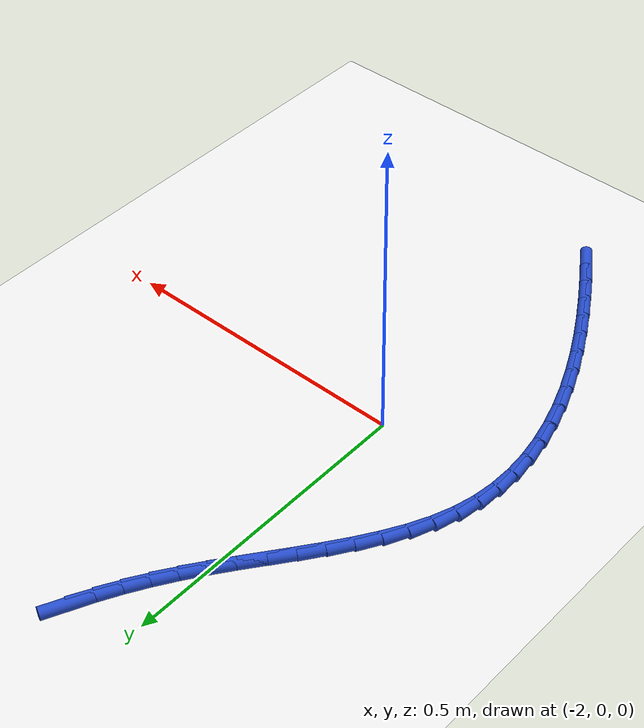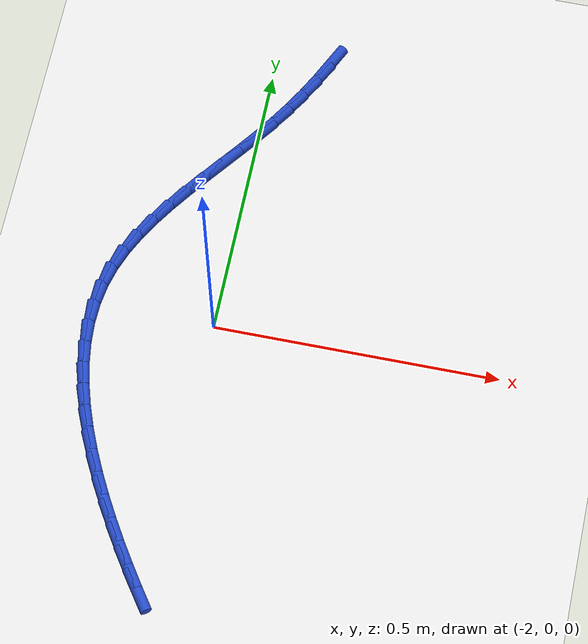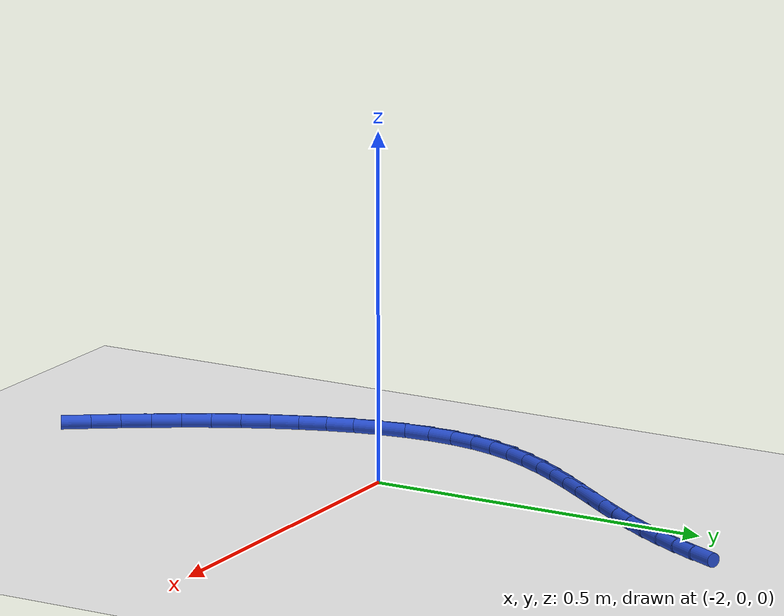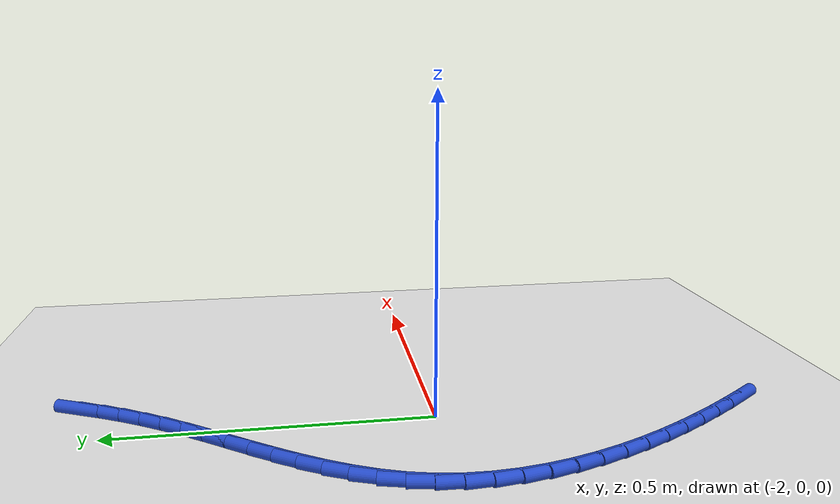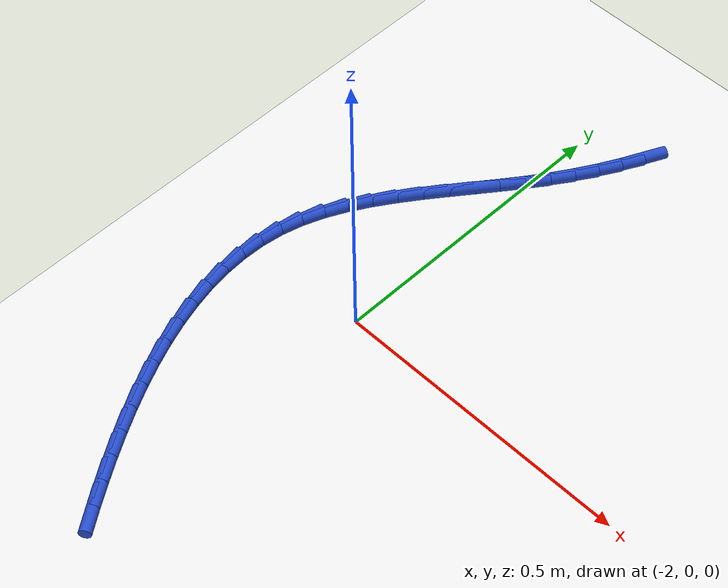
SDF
<sdf version="1.6">
 <world name="default">
  <model name="ground_plane">
   <static>1</static>
   <link name="link">
    <collision name="collision">
     <geometry><plane><normal>0 0 1</normal><size>100 100</size></plane></geometry>
     <surface><friction><ode><mu>100</mu><mu2>50</mu2></ode></friction></surface>
    </collision>
    <visual name="visual">
     <cast_shadows>0</cast_shadows>
     <geometry><plane><normal>0 0 1</normal><size>100 100</size></plane></geometry>
     <material>
      <script><uri>file://media/materials/scripts/gazebo.material</uri><name>Gazebo/WhiteGlow</name></script>
     </material>
    </visual>
   </link>
  </model>
  <model name="line">
   <link name="link_76">
    <pose>-1.9034430105590137 0.5442311205323154 0.01 0 1.57 1.1265762466182048</pose>
    <collision name="collision">
     <geometry><cylinder><radius>0.01</radius><length>0.08</length></cylinder></geometry>
    </collision>
    <visual name="visual">
     <material>
      <script><name>Gazebo/Blue</name><uri>file://media/materials/scripts/gazebo.material</uri></script>
     </material>
     <geometry><cylinder><radius>0.01</radius><length>0.08</length></cylinder></geometry>
    </visual>
   </link>
   <link name="link_77">
    <pose>-1.9202105519209811 0.5090012125801455 0.01 0 1.57 1.0825564240523091</pose>
    <collision name="collision">
     <geometry><cylinder><radius>0.01</radius><length>0.08</length></cylinder></geometry>
    </collision>
    <visual name="visual">
     <material>
      <script><name>Gazebo/Blue</name><uri>file://media/materials/scripts/gazebo.material</uri></script>
     </material>
     <geometry><cylinder><radius>0.01</radius><length>0.08</length></cylinder></geometry>
    </visual>
   </link>
   <link name="link_78">
    <pose>-1.9383796301669056 0.4747928299517657 0.01 0 1.57 1.0402720654731736</pose>
    <collision name="collision">
     <geometry><cylinder><radius>0.01</radius><length>0.08</length></cylinder></geometry>
    </collision>
    <visual name="visual">
     <material>
      <script><name>Gazebo/Blue</name><uri>file://media/materials/scripts/gazebo.material</uri></script>
     </material>
     <geometry><cylinder><radius>0.01</radius><length>0.08</length></cylinder></geometry>
    </visual>
   </link>
   <link name="link_79">
    <pose>-1.9579920157531838 0.44136005151611074 0.01 0 1.57 1.000632323656434</pose>
    <collision name="collision">
     <geometry><cylinder><radius>0.01</radius><length>0.08</length></cylinder></geometry>
    </collision>
    <visual name="visual">
     <material>
      <script><name>Gazebo/Blue</name><uri>file://media/materials/scripts/gazebo.material</uri></script>
     </material>
     <geometry><cylinder><radius>0.01</radius><length>0.08</length></cylinder></geometry>
    </visual>
   </link>
   <link name="link_80">
    <pose>-1.979089479136213 0.40845695614211586 0.01 0 1.57 0.9643962820231499</pose>
    <collision name="collision">
     <geometry><cylinder><radius>0.01</radius><length>0.08</length></cylinder></geometry>
    </collision>
    <visual name="visual">
     <material>
      <script><name>Gazebo/Blue</name><uri>file://media/materials/scripts/gazebo.material</uri></script>
     </material>
     <geometry><cylinder><radius>0.01</radius><length>0.08</length></cylinder></geometry>
    </visual>
   </link>
   <link name="link_81">
    <pose>-2.0017133189981187 0.375837731064948 0.01 0 1.57 0.9349297898216811</pose>
    <collision name="collision">
     <geometry><cylinder><radius>0.01</radius><length>0.08</length></cylinder></geometry>
    </collision>
    <visual name="visual">
     <material>
      <script><name>Gazebo/Blue</name><uri>file://media/materials/scripts/gazebo.material</uri></script>
     </material>
     <geometry><cylinder><radius>0.01</radius><length>0.08</length></cylinder></geometry>
    </visual>
   </link>
   <link name="link_82">
    <pose>-2.025733727519699 0.3432958665674344 0.01 0 1.57 0.9188517485163389</pose>
    <collision name="collision">
     <geometry><cylinder><radius>0.01</radius><length>0.08</length></cylinder></geometry>
    </collision>
    <visual name="visual">
     <material>
      <script><name>Gazebo/Blue</name><uri>file://media/materials/scripts/gazebo.material</uri></script>
     </material>
     <geometry><cylinder><radius>0.01</radius><length>0.08</length></cylinder></geometry>
    </visual>
   </link>
   <link name="link_83">
    <pose>-2.0505963351558774 0.31072237447376927 0.01 0 1.57 0.9163998262732816</pose>
    <collision name="collision">
     <geometry><cylinder><radius>0.01</radius><length>0.08</length></cylinder></geometry>
    </collision>
    <visual name="visual">
     <material>
      <script><name>Gazebo/Blue</name><uri>file://media/materials/scripts/gazebo.material</uri></script>
     </material>
     <geometry><cylinder><radius>0.01</radius><length>0.08</length></cylinder></geometry>
    </visual>
   </link>
   <link name="link_84">
    <pose>-2.0756820479346745 0.2780231337652432 0.01 0 1.57 0.9272876126318442</pose>
    <collision name="collision">
     <geometry><cylinder><radius>0.01</radius><length>0.08</length></cylinder></geometry>
    </collision>
    <visual name="visual">
     <material>
      <script><name>Gazebo/Blue</name><uri>file://media/materials/scripts/gazebo.material</uri></script>
     </material>
     <geometry><cylinder><radius>0.01</radius><length>0.08</length></cylinder></geometry>
    </visual>
   </link>
   <link name="link_85">
    <pose>-2.1003717718841144 0.24510402342314552 0.01 0 1.57 0.9518089789870747</pose>
    <collision name="collision">
     <geometry><cylinder><radius>0.01</radius><length>0.08</length></cylinder></geometry>
    </collision>
    <visual name="visual">
     <material>
      <script><name>Gazebo/Blue</name><uri>file://media/materials/scripts/gazebo.material</uri></script>
     </material>
     <geometry><cylinder><radius>0.01</radius><length>0.08</length></cylinder></geometry>
    </visual>
   </link>
   <link name="link_86">
    <pose>-2.124046413032217 0.2118709224287669 0.01 0 1.57 0.9908004186374121</pose>
    <collision name="collision">
     <geometry><cylinder><radius>0.01</radius><length>0.08</length></cylinder></geometry>
    </collision>
    <visual name="visual">
     <material>
      <script><name>Gazebo/Blue</name><uri>file://media/materials/scripts/gazebo.material</uri></script>
     </material>
     <geometry><cylinder><radius>0.01</radius><length>0.08</length></cylinder></geometry>
    </visual>
   </link>
   <link name="link_87">
    <pose>-2.146086877407006 0.17822970976339697 0.01 0 1.57 1.0455633589686588</pose>
    <collision name="collision">
     <geometry><cylinder><radius>0.01</radius><length>0.08</length></cylinder></geometry>
    </collision>
    <visual name="visual">
     <material>
      <script><name>Gazebo/Blue</name><uri>file://media/materials/scripts/gazebo.material</uri></script>
     </material>
     <geometry><cylinder><radius>0.01</radius><length>0.08</length></cylinder></geometry>
    </visual>
   </link>
   <link name="link_88">
    <pose>-2.165874071036504 0.1440862644083254 0.01 0 1.57 1.1176830497318</pose>
    <collision name="collision">
     <geometry><cylinder><radius>0.01</radius><length>0.08</length></cylinder></geometry>
    </collision>
    <visual name="visual">
     <material>
      <script><name>Gazebo/Blue</name><uri>file://media/materials/scripts/gazebo.material</uri></script>
     </material>
     <geometry><cylinder><radius>0.01</radius><length>0.08</length></cylinder></geometry>
    </visual>
   </link>
   <link name="link_89">
    <pose>-2.182788899948733 0.10934646534484281 0.01 0 1.57 1.2086395132754297</pose>
    <collision name="collision">
     <geometry><cylinder><radius>0.01</radius><length>0.08</length></cylinder></geometry>
    </collision>
    <visual name="visual">
     <material>
      <script><name>Gazebo/Blue</name><uri>file://media/materials/scripts/gazebo.material</uri></script>
     </material>
     <geometry><cylinder><radius>0.01</radius><length>0.08</length></cylinder></geometry>
    </visual>
   </link>
   <link name="link_90">
    <pose>-2.1962122701717135 0.0739161915542389 0.01 0 1.57 1.3185041586536634</pose>
    <collision name="collision">
     <geometry><cylinder><radius>0.01</radius><length>0.08</length></cylinder></geometry>
    </collision>
    <visual name="visual">
     <material>
      <script><name>Gazebo/Blue</name><uri>file://media/materials/scripts/gazebo.material</uri></script>
     </material>
     <geometry><cylinder><radius>0.01</radius><length>0.08</length></cylinder></geometry>
    </visual>
   </link>
   <link name="link_91">
    <pose>-2.2055465675425343 0.03770656572539131 0.01 0 1.57 1.4338232013494214</pose>
    <collision name="collision">
     <geometry><cylinder><radius>0.01</radius><length>0.08</length></cylinder></geometry>
    </collision>
    <visual name="visual">
     <material>
      <script><name>Gazebo/Blue</name><uri>file://media/materials/scripts/gazebo.material</uri></script>
     </material>
     <geometry><cylinder><radius>0.01</radius><length>0.08</length></cylinder></geometry>
    </visual>
   </link>
   <link name="link_92">
    <pose>-2.2106421645433896 0.0007380742274122064 0.01 0 1.57 1.5407263465757748</pose>
    <collision name="collision">
     <geometry><cylinder><radius>0.01</radius><length>0.08</length></cylinder></geometry>
    </collision>
    <visual name="visual">
     <material>
      <script><name>Gazebo/Blue</name><uri>file://media/materials/scripts/gazebo.material</uri></script>
     </material>
     <geometry><cylinder><radius>0.01</radius><length>0.08</length></cylinder></geometry>
    </visual>
   </link>
   <link name="link_93">
    <pose>-2.211773239273773 -0.036865336026571556 0.01 0 1.57 -1.5041774184072483</pose>
    <collision name="collision">
     <geometry><cylinder><radius>0.01</radius><length>0.08</length></cylinder></geometry>
    </collision>
    <visual name="visual">
     <material>
      <script><name>Gazebo/Blue</name><uri>file://media/materials/scripts/gazebo.material</uri></script>
     </material>
     <geometry><cylinder><radius>0.01</radius><length>0.08</length></cylinder></geometry>
    </visual>
   </link>
   <link name="link_94">
    <pose>-2.209230608768303 -0.0749756561827508 0.01 0 1.57 -1.4180429381843815</pose>
    <collision name="collision">
     <geometry><cylinder><radius>0.01</radius><length>0.08</length></cylinder></geometry>
    </collision>
    <visual name="visual">
     <material>
      <script><name>Gazebo/Blue</name><uri>file://media/materials/scripts/gazebo.material</uri></script>
     </material>
     <geometry><cylinder><radius>0.01</radius><length>0.08</length></cylinder></geometry>
    </visual>
   </link>
   <link name="link_95">
    <pose>-2.2033050900615962 -0.11346487738731546 0.01 0 1.57 -1.342097392286653</pose>
    <collision name="collision">
     <geometry><cylinder><radius>0.01</radius><length>0.08</length></cylinder></geometry>
    </collision>
    <visual name="visual">
     <material>
      <script><name>Gazebo/Blue</name><uri>file://media/materials/scripts/gazebo.material</uri></script>
     </material>
     <geometry><cylinder><radius>0.01</radius><length>0.08</length></cylinder></geometry>
    </visual>
   </link>
   <link name="link_96">
    <pose>-2.1942875001882713 -0.15220499078645566 0.01 0 1.57 -1.2755680322760676</pose>
    <collision name="collision">
     <geometry><cylinder><radius>0.01</radius><length>0.08</length></cylinder></geometry>
    </collision>
    <visual name="visual">
     <material>
      <script><name>Gazebo/Blue</name><uri>file://media/materials/scripts/gazebo.material</uri></script>
     </material>
     <geometry><cylinder><radius>0.01</radius><length>0.08</length></cylinder></geometry>
    </visual>
   </link>
   <link name="link_97">
    <pose>-2.1824686561829436 -0.19106798752636125 0.01 0 1.57 -1.2175063432113455</pose>
    <collision name="collision">
     <geometry><cylinder><radius>0.01</radius><length>0.08</length></cylinder></geometry>
    </collision>
    <visual name="visual">
     <material>
      <script><name>Gazebo/Blue</name><uri>file://media/materials/scripts/gazebo.material</uri></script>
     </material>
     <geometry><cylinder><radius>0.01</radius><length>0.08</length></cylinder></geometry>
    </visual>
   </link>
   <link name="link_98">
    <pose>-2.1681393750802305 -0.22992585875322308 0.01 0 1.57 -1.1669394072050199</pose>
    <collision name="collision">
     <geometry><cylinder><radius>0.01</radius><length>0.08</length></cylinder></geometry>
    </collision>
    <visual name="visual">
     <material>
      <script><name>Gazebo/Blue</name><uri>file://media/materials/scripts/gazebo.material</uri></script>
     </material>
     <geometry><cylinder><radius>0.01</radius><length>0.08</length></cylinder></geometry>
    </visual>
   </link>
   <link name="link_99">
    <pose>-2.1515904739147502 -0.26865059561322974 0.01 0 1.57 -1.1229556603447193</pose>
    <collision name="collision">
     <geometry><cylinder><radius>0.01</radius><length>0.08</length></cylinder></geometry>
    </collision>
    <visual name="visual">
     <material>
      <script><name>Gazebo/Blue</name><uri>file://media/materials/scripts/gazebo.material</uri></script>
     </material>
     <geometry><cylinder><radius>0.01</radius><length>0.08</length></cylinder></geometry>
    </visual>
   </link>
   <link name="link_100">
    <pose>-2.13311276972112 -0.30711418925257195 0.01 0 1.57 -1.0847461050393252</pose>
    <collision name="collision">
     <geometry><cylinder><radius>0.01</radius><length>0.08</length></cylinder></geometry>
    </collision>
    <visual name="visual">
     <material>
      <script><name>Gazebo/Blue</name><uri>file://media/materials/scripts/gazebo.material</uri></script>
     </material>
     <geometry><cylinder><radius>0.01</radius><length>0.08</length></cylinder></geometry>
    </visual>
   </link>
   <link name="link_101">
    <pose>-2.1129970795339545 -0.34518863081743945 0.01 0 1.57 -1.0516189827240279</pose>
    <collision name="collision">
     <geometry><cylinder><radius>0.01</radius><length>0.08</length></cylinder></geometry>
    </collision>
    <visual name="visual">
     <material>
      <script><name>Gazebo/Blue</name><uri>file://media/materials/scripts/gazebo.material</uri></script>
     </material>
     <geometry><cylinder><radius>0.01</radius><length>0.08</length></cylinder></geometry>
    </visual>
   </link>
   <link name="link_102">
    <pose>-2.0915342203878744 -0.38274591145402265 0.01 0 1.57 -1.023000567484069</pose>
    <collision name="collision">
     <geometry><cylinder><radius>0.01</radius><length>0.08</length></cylinder></geometry>
    </collision>
    <visual name="visual">
     <material>
      <script><name>Gazebo/Blue</name><uri>file://media/materials/scripts/gazebo.material</uri></script>
     </material>
     <geometry><cylinder><radius>0.01</radius><length>0.08</length></cylinder></geometry>
    </visual>
   </link>
   <link name="link_103">
    <pose>-2.069015009317494 -0.4196580223085121 0.01 0 1.57 -0.9984301324590859</pose>
    <collision name="collision">
     <geometry><cylinder><radius>0.01</radius><length>0.08</length></cylinder></geometry>
    </collision>
    <visual name="visual">
     <material>
      <script><name>Gazebo/Blue</name><uri>file://media/materials/scripts/gazebo.material</uri></script>
     </material>
     <geometry><cylinder><radius>0.01</radius><length>0.08</length></cylinder></geometry>
    </visual>
   </link>
   <link name="link_104">
    <pose>-2.0457302633574317 -0.45579695452709634 0.01 0 1.57 -0.9775539966110475</pose>
    <collision name="collision">
     <geometry><cylinder><radius>0.01</radius><length>0.08</length></cylinder></geometry>
    </collision>
    <visual name="visual">
     <material>
      <script><name>Gazebo/Blue</name><uri>file://media/materials/scripts/gazebo.material</uri></script>
     </material>
     <geometry><cylinder><radius>0.01</radius><length>0.08</length></cylinder></geometry>
    </visual>
   </link>
   <link name="link_105">
    <pose>-2.021970799542305 -0.4910346992559662 0.01 0 1.57 -0.9601218225669738</pose>
    <collision name="collision">
     <geometry><cylinder><radius>0.01</radius><length>0.08</length></cylinder></geometry>
    </collision>
    <visual name="visual">
     <material>
      <script><name>Gazebo/Blue</name><uri>file://media/materials/scripts/gazebo.material</uri></script>
     </material>
     <geometry><cylinder><radius>0.01</radius><length>0.08</length></cylinder></geometry>
    </visual>
   </link>
  </model>
 </world>
</sdf>
